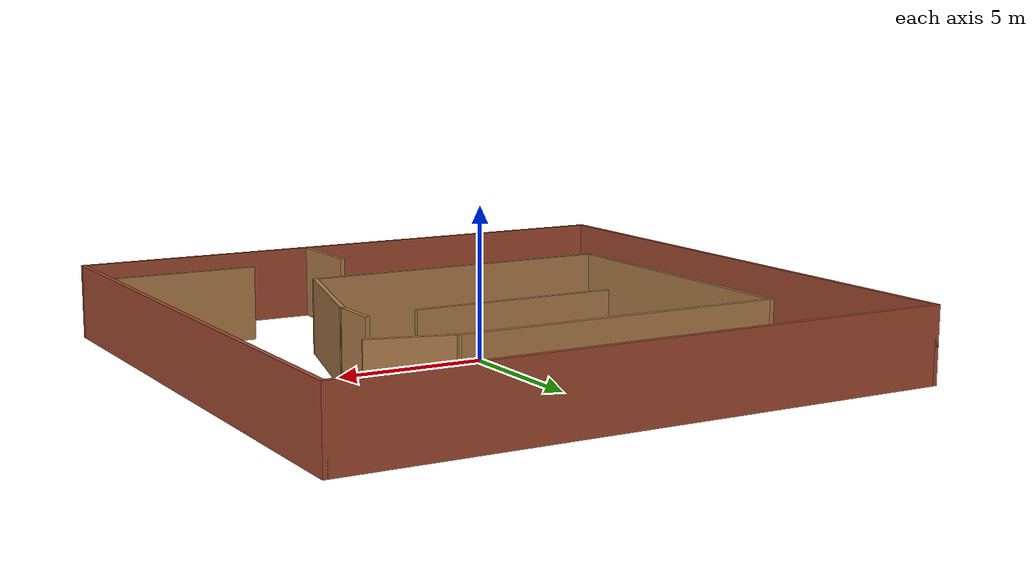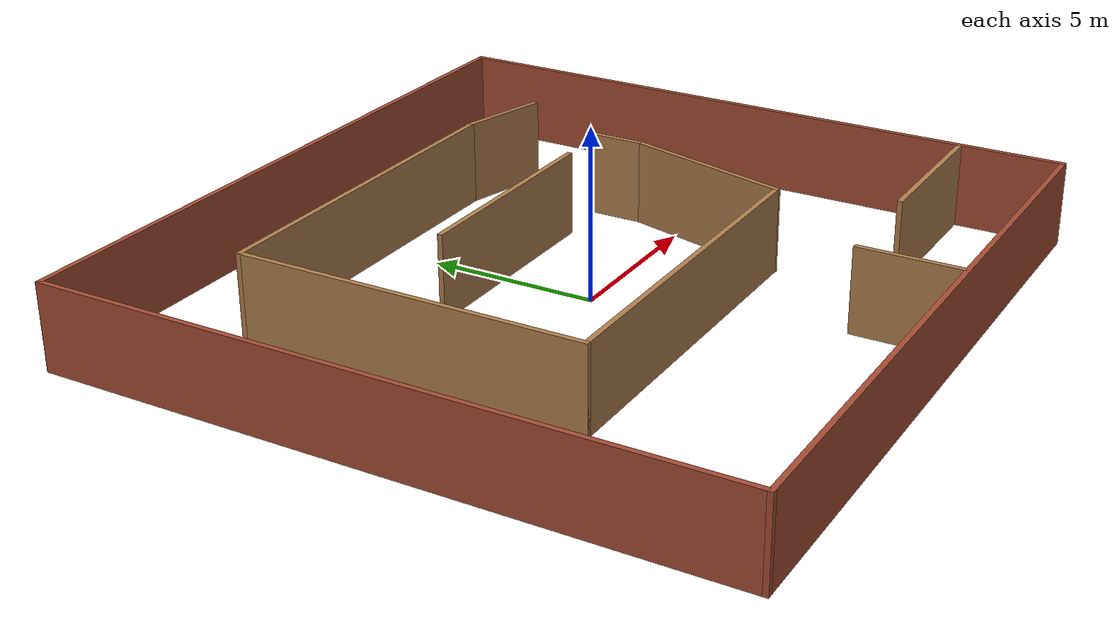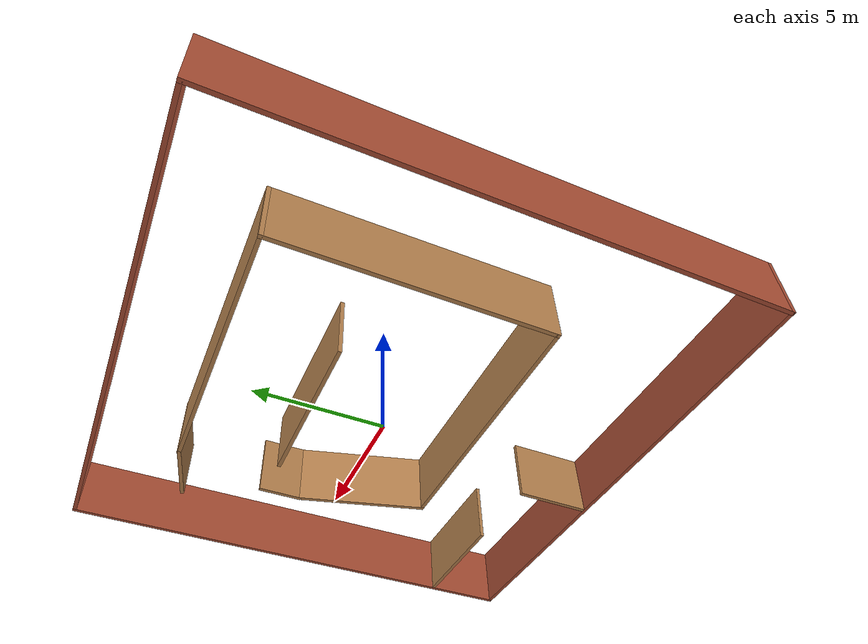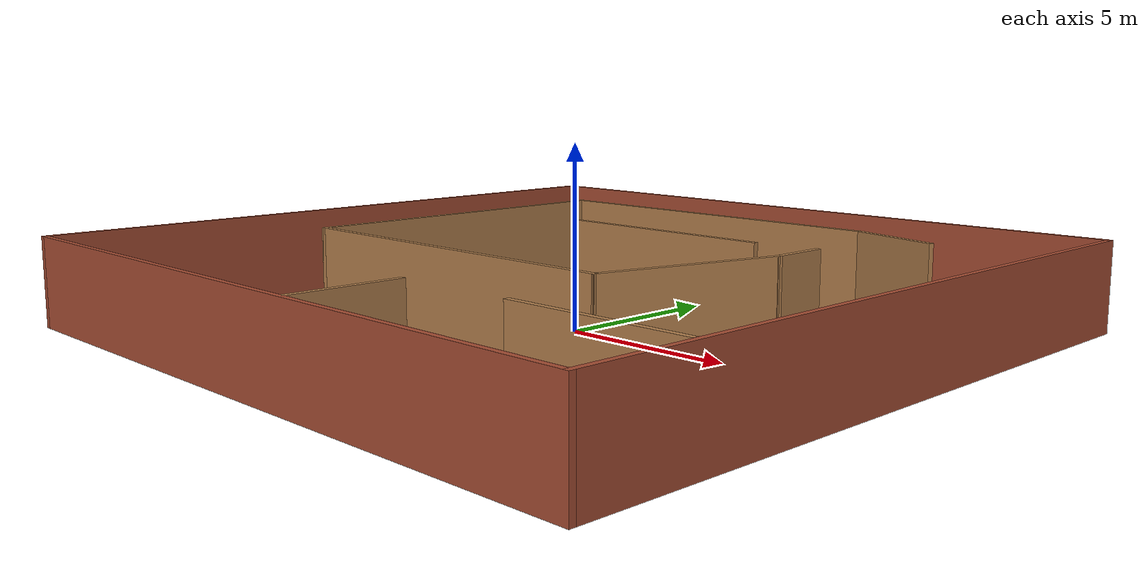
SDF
<?xml version='1.0'?>
<sdf version='1.7'>
  <model name='walls'>
    <pose>-0.125037 -0.026667 0 0 -0 0</pose>
    <link name='Wall_12'>
      <collision name='Wall_12_Collision'>
        <geometry>
          <box>
            <size>19.75 0.15 2.5</size>
          </box>
        </geometry>
        <pose>0 0 1.25 0 -0 0</pose>
      </collision>
      <visual name='Wall_12_Visual'>
        <pose>0 0 1.25 0 -0 0</pose>
        <geometry>
          <box>
            <size>19.75 0.15 2.5</size>
          </box>
        </geometry>
        <material>
          <script>
            <uri>file://media/materials/scripts/gazebo.material</uri>
            <name>Gazebo/Bricks</name>
          </script>
          <ambient>1 1 1 1</ambient>
        </material>
        <meta>
          <layer>0</layer>
        </meta>
      </visual>
      <pose>-10.05 -0 0 0 -0 1.5708</pose>
    </link>
    <link name='Wall_13'>
      <collision name='Wall_13_Collision'>
        <geometry>
          <box>
            <size>20.25 0.15 2.5</size>
          </box>
        </geometry>
        <pose>0 0 1.25 0 -0 0</pose>
      </collision>
      <visual name='Wall_13_Visual'>
        <pose>0 0 1.25 0 -0 0</pose>
        <geometry>
          <box>
            <size>20.25 0.15 2.5</size>
          </box>
        </geometry>
        <material>
          <script>
            <uri>file://media/materials/scripts/gazebo.material</uri>
            <name>Gazebo/Bricks</name>
          </script>
          <ambient>1 1 1 1</ambient>
        </material>
        <meta>
          <layer>0</layer>
        </meta>
      </visual>
      <pose>-0 9.8 0 0 -0 0</pose>
    </link>
    <link name='Wall_14'>
      <collision name='Wall_14_Collision'>
        <geometry>
          <box>
            <size>19.75 0.15 2.5</size>
          </box>
        </geometry>
        <pose>0 0 1.25 0 -0 0</pose>
      </collision>
      <visual name='Wall_14_Visual'>
        <pose>0 0 1.25 0 -0 0</pose>
        <geometry>
          <box>
            <size>19.75 0.15 2.5</size>
          </box>
        </geometry>
        <material>
          <script>
            <uri>file://media/materials/scripts/gazebo.material</uri>
            <name>Gazebo/Bricks</name>
          </script>
          <ambient>1 1 1 1</ambient>
        </material>
        <meta>
          <layer>0</layer>
        </meta>
      </visual>
      <pose>10.05 -0 0 0 -0 -1.5708</pose>
    </link>
    <link name='Wall_15'>
      <collision name='Wall_15_Collision'>
        <geometry>
          <box>
            <size>20.25 0.15 2.5</size>
          </box>
        </geometry>
        <pose>0 0 1.25 0 -0 0</pose>
      </collision>
      <visual name='Wall_15_Visual'>
        <pose>0 0 1.25 0 -0 0</pose>
        <geometry>
          <box>
            <size>20.25 0.15 2.5</size>
          </box>
        </geometry>
        <material>
          <script>
            <uri>file://media/materials/scripts/gazebo.material</uri>
            <name>Gazebo/Bricks</name>
          </script>
          <ambient>1 1 1 1</ambient>
        </material>
        <meta>
          <layer>0</layer>
        </meta>
      </visual>
      <pose>-0 -9.8 0 0 -0 3.14159</pose>
    </link>
    <link name='Wall_18'>
      <collision name='Wall_18_Collision'>
        <geometry>
          <box>
            <size>10.25 0.15 2.5</size>
          </box>
        </geometry>
        <pose>0 0 1.25 0 -0 0</pose>
      </collision>
      <visual name='Wall_18_Visual'>
        <pose>0 0 1.25 0 -0 0</pose>
        <geometry>
          <box>
            <size>10.25 0.15 2.5</size>
          </box>
        </geometry>
        <material>
          <script>
            <uri>file://media/materials/scripts/gazebo.material</uri>
            <name>Gazebo/Wood</name>
          </script>
          <ambient>1 1 1 1</ambient>
        </material>
        <meta>
          <layer>0</layer>
        </meta>
      </visual>
      <pose>-6.30284 1.57273 0 0 -0 -1.5708</pose>
    </link>
    <link name='Wall_20'>
      <collision name='Wall_20_Collision'>
        <geometry>
          <box>
            <size>11 0.15 2.5</size>
          </box>
        </geometry>
        <pose>0 0 1.25 0 -0 0</pose>
      </collision>
      <visual name='Wall_20_Visual'>
        <pose>0 0 1.25 0 -0 0</pose>
        <geometry>
          <box>
            <size>11 0.15 2.5</size>
          </box>
        </geometry>
        <material>
          <script>
            <uri>file://media/materials/scripts/gazebo.material</uri>
            <name>Gazebo/Wood</name>
          </script>
          <ambient>1 1 1 1</ambient>
        </material>
        <meta>
          <layer>0</layer>
        </meta>
      </visual>
      <pose>-0.877842 6.62273 0 0 -0 0</pose>
    </link>
    <link name='Wall_21'>
      <collision name='Wall_21_Collision'>
        <geometry>
          <box>
            <size>2.75 0.15 2.5</size>
          </box>
        </geometry>
        <pose>0 0 1.25 0 -0 0</pose>
      </collision>
      <visual name='Wall_21_Visual'>
        <pose>0 0 1.25 0 -0 0</pose>
        <geometry>
          <box>
            <size>2.75 0.15 2.5</size>
          </box>
        </geometry>
        <material>
          <script>
            <uri>file://media/materials/scripts/gazebo.material</uri>
            <name>Gazebo/Wood</name>
          </script>
          <ambient>1 1 1 1</ambient>
        </material>
        <meta>
          <layer>0</layer>
        </meta>
      </visual>
      <pose>5.80286 6.28627 0 0 -0 -0.261799</pose>
    </link>
    <link name='Wall_24'>
      <collision name='Wall_24_Collision'>
        <geometry>
          <box>
            <size>4.84252 0.15 2.5</size>
          </box>
        </geometry>
        <pose>0 0 1.25 0 -0 0</pose>
      </collision>
      <visual name='Wall_24_Visual'>
        <pose>0 0 1.25 0 -0 0</pose>
        <geometry>
          <box>
            <size>4.84252 0.15 2.5</size>
          </box>
        </geometry>
        <material>
          <script>
            <uri>file://media/materials/scripts/gazebo.material</uri>
            <name>Gazebo/Wood</name>
          </script>
          <ambient>1 1 1 1</ambient>
        </material>
        <meta>
          <layer>0</layer>
        </meta>
      </visual>
      <pose>7.54232 -6.74676 0 0 -0 3.14159</pose>
    </link>
    <link name='Wall_28'>
      <collision name='Wall_28_Collision'>
        <geometry>
          <box>
            <size>3 0.15 2.5</size>
          </box>
        </geometry>
        <pose>0 0 1.25 0 -0 0</pose>
      </collision>
      <visual name='Wall_28_Visual'>
        <pose>0 0 1.25 0 -0 0</pose>
        <geometry>
          <box>
            <size>3 0.15 2.5</size>
          </box>
        </geometry>
        <material>
          <script>
            <uri>file://media/materials/scripts/gazebo.material</uri>
            <name>Gazebo/Wood</name>
          </script>
          <ambient>1 1 1 1</ambient>
        </material>
        <meta>
          <layer>0</layer>
        </meta>
      </visual>
      <pose>1.79287 -8.26428 0 0 -0 -1.5708</pose>
    </link>
    <link name='Wall_33'>
      <collision name='Wall_33_Collision'>
        <geometry>
          <box>
            <size>10.75 0.15 2.5</size>
          </box>
        </geometry>
        <pose>0 0 1.25 0 -0 0</pose>
      </collision>
      <visual name='Wall_33_Visual'>
        <pose>0 0 1.25 0 -0 0</pose>
        <geometry>
          <box>
            <size>10.75 0.15 2.5</size>
          </box>
        </geometry>
        <material>
          <script>
            <uri>file://media/materials/scripts/gazebo.material</uri>
            <name>Gazebo/Wood</name>
          </script>
          <ambient>1 1 1 1</ambient>
        </material>
        <meta>
          <layer>0</layer>
        </meta>
      </visual>
      <pose>-1.00284 -3.47727 0 0 -0 0</pose>
    </link>
    <link name='Wall_34'>
      <collision name='Wall_34_Collision'>
        <geometry>
          <box>
            <size>5.25 0.15 2.5</size>
          </box>
        </geometry>
        <pose>0 0 1.25 0 -0 0</pose>
      </collision>
      <visual name='Wall_34_Visual'>
        <pose>0 0 1.25 0 -0 0</pose>
        <geometry>
          <box>
            <size>5.25 0.15 2.5</size>
          </box>
        </geometry>
        <material>
          <script>
            <uri>file://media/materials/scripts/gazebo.material</uri>
            <name>Gazebo/Wood</name>
          </script>
          <ambient>1 1 1 1</ambient>
        </material>
        <meta>
          <layer>0</layer>
        </meta>
      </visual>
      <pose>4.95715 -1.01416 0 0 -0 1.309</pose>
    </link>
    <link name='Wall_37'>
      <collision name='Wall_37_Collision'>
        <geometry>
          <box>
            <size>1.75 0.15 2.5</size>
          </box>
        </geometry>
        <pose>0 0 1.25 0 -0 0</pose>
      </collision>
      <visual name='Wall_37_Visual'>
        <pose>0 0 1.25 0 -0 0</pose>
        <geometry>
          <box>
            <size>1.75 0.15 2.5</size>
          </box>
        </geometry>
        <material>
          <script>
            <uri>file://media/materials/scripts/gazebo.material</uri>
            <name>Gazebo/Wood</name>
          </script>
          <ambient>1 1 1 1</ambient>
        </material>
        <meta>
          <layer>0</layer>
        </meta>
      </visual>
      <pose>5.61714 2.24895 0 0 -0 1.5708</pose>
    </link>
    <link name='Wall_39'>
      <collision name='Wall_39_Collision'>
        <geometry>
          <box>
            <size>6.75 0.15 2.5</size>
          </box>
        </geometry>
        <pose>0 0 1.25 0 -0 0</pose>
      </collision>
      <visual name='Wall_39_Visual'>
        <pose>0 0 1.25 0 -0 0</pose>
        <geometry>
          <box>
            <size>6.75 0.15 2.5</size>
          </box>
        </geometry>
        <material>
          <script>
            <uri>file://media/materials/scripts/gazebo.material</uri>
            <name>Gazebo/Wood</name>
          </script>
          <ambient>1 1 1 1</ambient>
        </material>
        <meta>
          <layer>0</layer>
        </meta>
      </visual>
      <pose>0.516385 2.84728 0 0 -0 3.14159</pose>
    </link>
    <static>1</static>
  </model>
</sdf>
